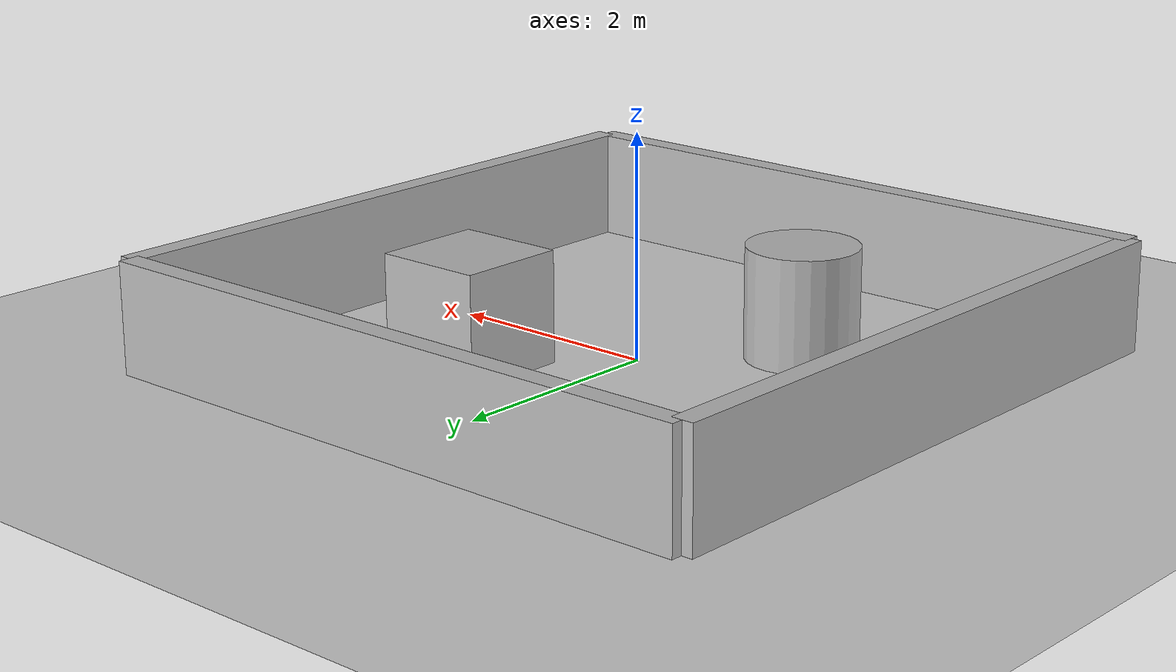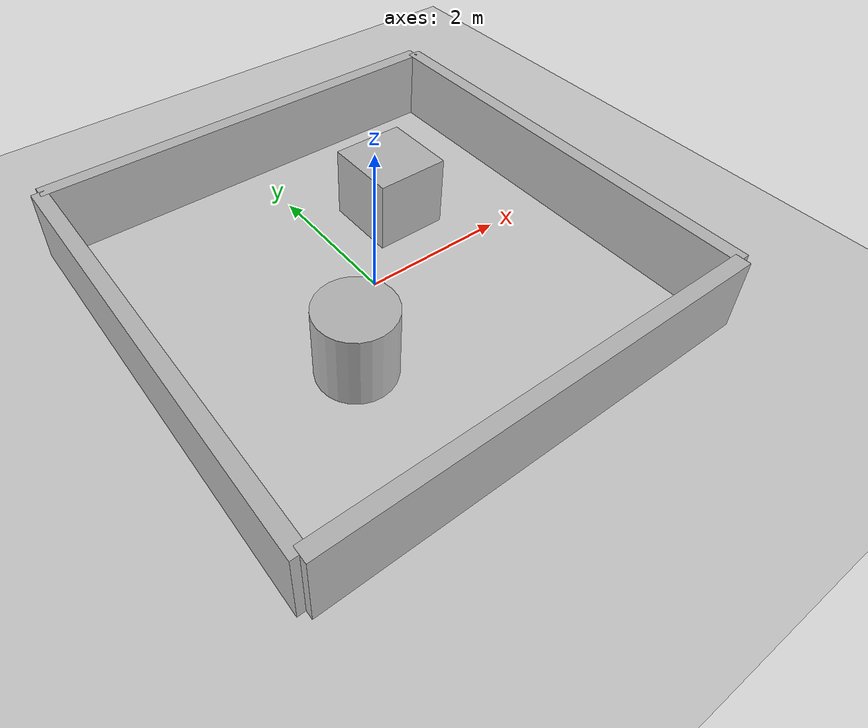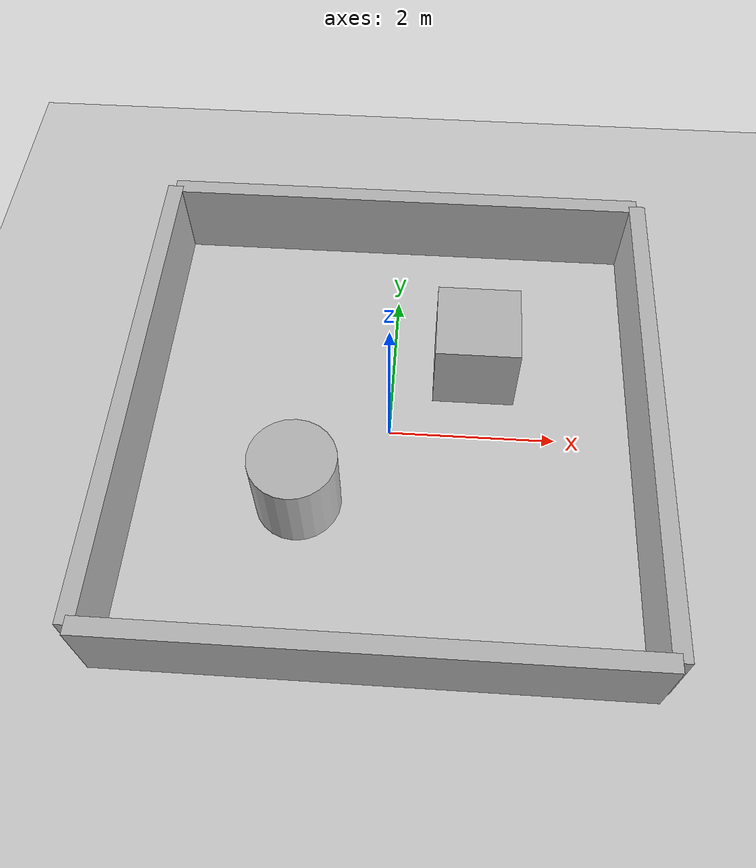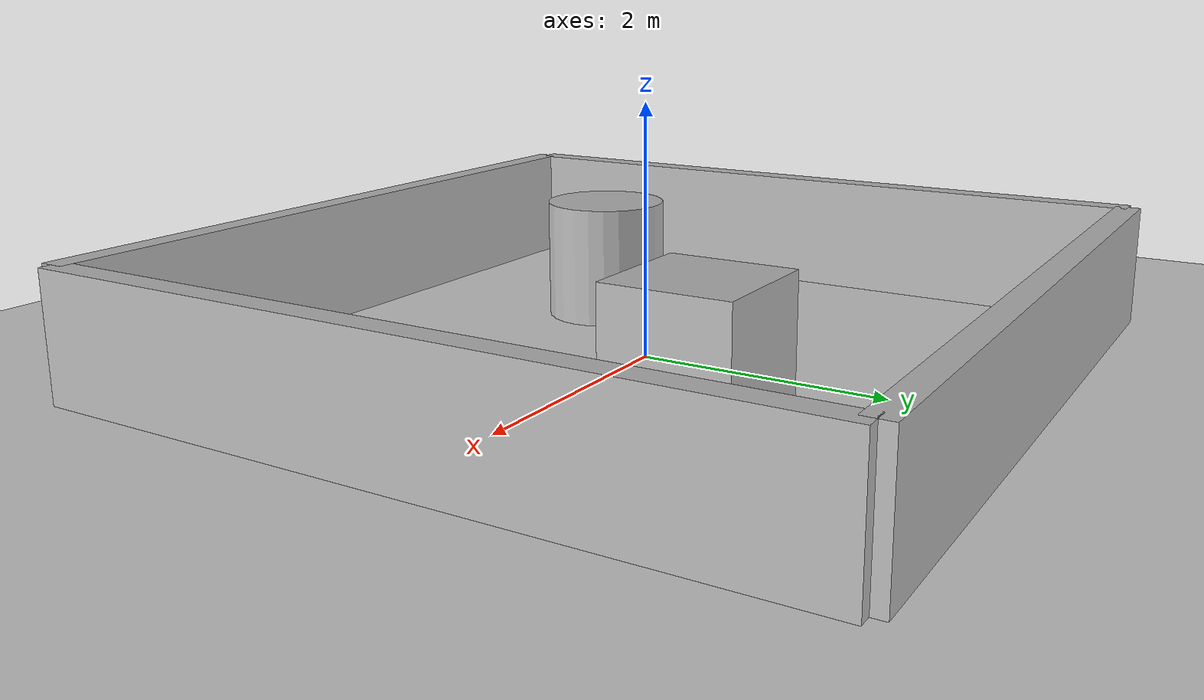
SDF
<sdf version="1.9">
  <world name="maze_world">

    <plugin filename="gz-sim-physics-system" name="gz::sim::systems::Physics"/>
    <plugin filename="gz-sim-user-commands-system" name="gz::sim::systems::UserCommands"/>
    <plugin filename="gz-sim-scene-broadcaster-system" name="gz::sim::systems::SceneBroadcaster"/>

    <include>
      <uri>https://fuel.gazebosim.org/1.0/openrobotics/models/Sun</uri>
    </include>
    <include>
      <uri>https://fuel.gazebosim.org/1.0/openrobotics/models/Ground Plane</uri>
    </include>

    <model name="wall_top">
      <static>true</static>
      <pose>0 3 0.5 0 0 0</pose>
      <link name="link">
        <collision name="collision"><geometry><box><size>6 0.2 1</size></box></geometry></collision>
        <visual name="visual"><geometry><box><size>6 0.2 1</size></box></geometry></visual>
      </link>
    </model>

    <model name="wall_bottom">
      <static>true</static>
      <pose>0 -3 0.5 0 0 0</pose>
      <link name="link">
        <collision name="collision"><geometry><box><size>6 0.2 1</size></box></geometry></collision>
        <visual name="visual"><geometry><box><size>6 0.2 1</size></box></geometry></visual>
      </link>
    </model>

    <model name="wall_left">
      <static>true</static>
      <pose>-3 0 0.5 0 0 0</pose>
      <link name="link">
        <collision name="collision"><geometry><box><size>0.2 6 1</size></box></geometry></collision>
        <visual name="visual"><geometry><box><size>0.2 6 1</size></box></geometry></visual>
      </link>
    </model>

    <model name="wall_right">
      <static>true</static>
      <pose>3 0 0.5 0 0 0</pose>
      <link name="link">
        <collision name="collision"><geometry><box><size>0.2 6 1</size></box></geometry></collision>
        <visual name="visual"><geometry><box><size>0.2 6 1</size></box></geometry></visual>
      </link>
    </model>

    <model name="obstacle_box">
      <static>true</static>
      <pose>1 1 0.5 0 0 0</pose>
      <link name="link">
        <collision name="collision"><geometry><box><size>1 1 1</size></box></geometry></collision>
        <visual name="visual"><geometry><box><size>1 1 1</size></box></geometry></visual>
      </link>
    </model>

    <model name="obstacle_cylinder">
      <static>true</static>
      <pose>-1 -1 0.5 0 0 0</pose>
      <link name="link">
        <collision name="collision"><geometry><cylinder><radius>0.5</radius><length>1</length></cylinder></geometry></collision>
        <visual name="visual"><geometry><cylinder><radius>0.5</radius><length>1</length></cylinder></geometry></visual>
      </link>
    </model>

  </world>
</sdf>
